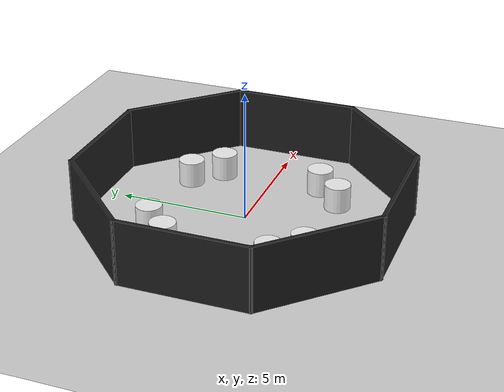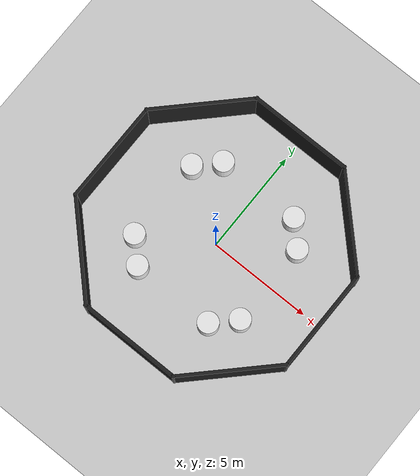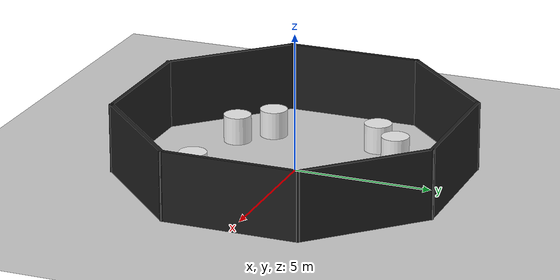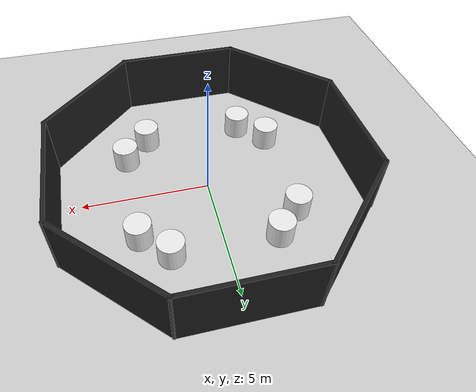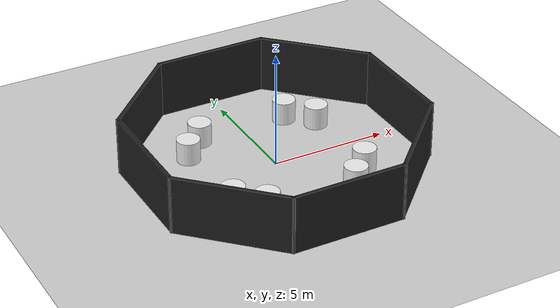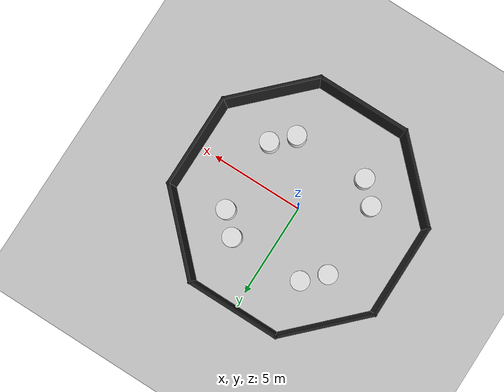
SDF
<sdf version="1.7">
 <world name="default">
  <light name="sun" type="directional">
   <pose>0 0 10 0 -0 0</pose>
   <diffuse>0.8 0.8 0.8 1</diffuse>
   <specular>0.2 0.2 0.2 1</specular>
   <attenuation>
    <range>1000</range>
    <constant>0.9</constant>
    <linear>0.01</linear>
    <quadratic>0.001</quadratic>
   </attenuation>
   <direction>-0.5 0.1 -0.9</direction>
   <spot><inner_angle>0</inner_angle><outer_angle>0</outer_angle><falloff>0</falloff></spot>
  </light>
  <model name="ground_plane">
   <static>1</static>
   <link name="link">
    <collision name="collision">
     <geometry><plane><normal>0 0 1</normal><size>100 100</size></plane></geometry>
     <surface>
      <contact><collide_bitmask>65535</collide_bitmask></contact>
      <friction><ode><mu>100</mu><mu2>50</mu2></ode></friction>
     </surface>
    </collision>
    <visual name="visual">
     <cast_shadows>0</cast_shadows>
     <geometry><plane><normal>0 0 1</normal><size>100 100</size></plane></geometry>
     <material>
      <script><uri>file://media/materials/scripts/gazebo.material</uri><name>Gazebo/Gray</name></script>
     </material>
    </visual>
   </link>
  </model>
  <gravity>0 0 -9.8</gravity>
  <magnetic_field>6e-06 2.3e-05 -4.2e-05</magnetic_field>
  <atmosphere type="adiabatic"/>
  <physics type="ode">
   <max_step_size>0.001</max_step_size>
   <real_time_factor>1</real_time_factor>
   <real_time_update_rate>1000</real_time_update_rate>
  </physics>
  <scene><ambient>0.4 0.4 0.4 1</ambient><background>0.7 0.7 0.7 1</background><shadows>1</shadows></scene>
  <audio><device>default</device></audio>
  <spherical_coordinates>
   <surface_model>EARTH_WGS84</surface_model>
   <latitude_deg>0</latitude_deg>
   <longitude_deg>0</longitude_deg>
   <elevation>0</elevation>
   <heading_deg>0</heading_deg>
  </spherical_coordinates>
  <model name="walls">
   <link name="Wall_16">
    <collision name="Wall_16_Collision">
     <geometry><box><size>5 0.15 2.5</size></box></geometry>
     <pose>0 0 1.25 0 -0 0</pose>
    </collision>
    <visual name="Wall_16_Visual">
     <pose>0 0 1.25 0 -0 0</pose>
     <geometry><box><size>5 0.15 2.5</size></box></geometry>
     <material>
      <script><uri>file://media/materials/scripts/gazebo.material</uri><name>Gazebo/Black</name></script>
      <ambient>1 1 1 1</ambient>
     </material>
     <meta><layer>0</layer></meta>
    </visual>
    <pose>0 -5.85447 0 0 -0 0</pose>
   </link>
   <link name="Wall_17">
    <collision name="Wall_17_Collision">
     <geometry><box><size>5 0.15 2.5</size></box></geometry>
     <pose>0 0 1.25 0 -0 0</pose>
    </collision>
    <visual name="Wall_17_Visual">
     <pose>0 0 1.25 0 -0 0</pose>
     <geometry><box><size>5 0.15 2.5</size></box></geometry>
     <material>
      <script><uri>file://media/materials/scripts/gazebo.material</uri><name>Gazebo/Black</name></script>
      <ambient>1 1 1 1</ambient>
     </material>
     <meta><layer>0</layer></meta>
    </visual>
    <pose>4.13973 -4.13973 0 0 -0 0.785398</pose>
   </link>
   <link name="Wall_18">
    <collision name="Wall_18_Collision">
     <geometry><box><size>5 0.15 2.5</size></box></geometry>
     <pose>0 0 1.25 0 -0 0</pose>
    </collision>
    <visual name="Wall_18_Visual">
     <pose>0 0 1.25 0 -0 0</pose>
     <geometry><box><size>5 0.15 2.5</size></box></geometry>
     <material>
      <script><uri>file://media/materials/scripts/gazebo.material</uri><name>Gazebo/Black</name></script>
      <ambient>1 1 1 1</ambient>
     </material>
     <meta><layer>0</layer></meta>
    </visual>
    <pose>5.85447 -0 0 0 -0 1.5708</pose>
   </link>
   <link name="Wall_19">
    <collision name="Wall_19_Collision">
     <geometry><box><size>5 0.15 2.5</size></box></geometry>
     <pose>0 0 1.25 0 -0 0</pose>
    </collision>
    <visual name="Wall_19_Visual">
     <pose>0 0 1.25 0 -0 0</pose>
     <geometry><box><size>5 0.15 2.5</size></box></geometry>
     <material>
      <script><uri>file://media/materials/scripts/gazebo.material</uri><name>Gazebo/Black</name></script>
      <ambient>1 1 1 1</ambient>
     </material>
     <meta><layer>0</layer></meta>
    </visual>
    <pose>4.13973 4.13973 0 0 -0 2.35619</pose>
   </link>
   <link name="Wall_20">
    <collision name="Wall_20_Collision">
     <geometry><box><size>5 0.15 2.5</size></box></geometry>
     <pose>0 0 1.25 0 -0 0</pose>
    </collision>
    <visual name="Wall_20_Visual">
     <pose>0 0 1.25 0 -0 0</pose>
     <geometry><box><size>5 0.15 2.5</size></box></geometry>
     <material>
      <script><uri>file://media/materials/scripts/gazebo.material</uri><name>Gazebo/Black</name></script>
      <ambient>1 1 1 1</ambient>
     </material>
     <meta><layer>0</layer></meta>
    </visual>
    <pose>0 5.85447 0 0 -0 3.14159</pose>
   </link>
   <link name="Wall_21">
    <collision name="Wall_21_Collision">
     <geometry><box><size>5 0.15 2.5</size></box></geometry>
     <pose>0 0 1.25 0 -0 0</pose>
    </collision>
    <visual name="Wall_21_Visual">
     <pose>0 0 1.25 0 -0 0</pose>
     <geometry><box><size>5 0.15 2.5</size></box></geometry>
     <material>
      <script><uri>file://media/materials/scripts/gazebo.material</uri><name>Gazebo/Black</name></script>
      <ambient>1 1 1 1</ambient>
     </material>
     <meta><layer>0</layer></meta>
    </visual>
    <pose>-4.13973 4.13973 0 0 -0 -2.35619</pose>
   </link>
   <link name="Wall_22">
    <collision name="Wall_22_Collision">
     <geometry><box><size>5 0.15 2.5</size></box></geometry>
     <pose>0 0 1.25 0 -0 0</pose>
    </collision>
    <visual name="Wall_22_Visual">
     <pose>0 0 1.25 0 -0 0</pose>
     <geometry><box><size>5 0.15 2.5</size></box></geometry>
     <material>
      <script><uri>file://media/materials/scripts/gazebo.material</uri><name>Gazebo/Black</name></script>
      <ambient>1 1 1 1</ambient>
     </material>
     <meta><layer>0</layer></meta>
    </visual>
    <pose>-5.85447 -0 0 0 -0 -1.5708</pose>
   </link>
   <link name="Wall_23">
    <collision name="Wall_23_Collision">
     <geometry><box><size>5 0.15 2.5</size></box></geometry>
     <pose>0 0 1.25 0 -0 0</pose>
    </collision>
    <visual name="Wall_23_Visual">
     <pose>0 0 1.25 0 -0 0</pose>
     <geometry><box><size>5 0.15 2.5</size></box></geometry>
     <material>
      <script><uri>file://media/materials/scripts/gazebo.material</uri><name>Gazebo/Black</name></script>
      <ambient>1 1 1 1</ambient>
     </material>
     <meta><layer>0</layer></meta>
    </visual>
    <pose>-4.13973 -4.13973 0 0 -0 -0.785398</pose>
   </link>
   <static>1</static>
  </model>
  <model name="unit_cylinder">
   <static>1</static>
   <pose>-2 -3 0.499994 -1e-06 0 0</pose>
   <link name="link">
    <inertial>
     <mass>1</mass>
     <inertia><ixx>0.145833</ixx><ixy>0</ixy><ixz>0</ixz><iyy>0.145833</iyy><iyz>0</iyz><izz>0.125</izz></inertia>
    </inertial>
    <collision name="collision">
     <geometry><cylinder><radius>0.5</radius><length>1</length></cylinder></geometry>
    </collision>
    <visual name="visual">
     <geometry><cylinder><radius>0.5</radius><length>1</length></cylinder></geometry>
     <material>
      <script><name>Gazebo/White</name><uri>file://media/materials/scripts/gazebo.material</uri></script>
     </material>
    </visual>
   </link>
  </model>
  <model name="unit_cylinder1">
   <static>1</static>
   <pose>-3 -2 0.5 0 -0 0</pose>
   <link name="link">
    <inertial>
     <mass>1</mass>
     <inertia><ixx>0.145833</ixx><ixy>0</ixy><ixz>0</ixz><iyy>0.145833</iyy><iyz>0</iyz><izz>0.125</izz></inertia>
    </inertial>
    <collision name="collision">
     <geometry><cylinder><radius>0.5</radius><length>1</length></cylinder></geometry>
    </collision>
    <visual name="visual">
     <geometry><cylinder><radius>0.5</radius><length>1</length></cylinder></geometry>
     <material>
      <script><name>Gazebo/White</name><uri>file://media/materials/scripts/gazebo.material</uri></script>
     </material>
    </visual>
   </link>
  </model>
  <model name="unit_cylinder2">
   <static>1</static>
   <pose>-3 2 0.499994 -1e-06 0 0</pose>
   <link name="link">
    <inertial>
     <mass>1</mass>
     <inertia><ixx>0.145833</ixx><ixy>0</ixy><ixz>0</ixz><iyy>0.145833</iyy><iyz>0</iyz><izz>0.125</izz></inertia>
    </inertial>
    <collision name="collision">
     <geometry><cylinder><radius>0.5</radius><length>1</length></cylinder></geometry>
    </collision>
    <visual name="visual">
     <geometry><cylinder><radius>0.5</radius><length>1</length></cylinder></geometry>
     <material>
      <script><name>Gazebo/White</name><uri>file://media/materials/scripts/gazebo.material</uri></script>
     </material>
    </visual>
   </link>
  </model>
  <model name="unit_cylinder3">
   <static>1</static>
   <pose>-2 3 0.499994 -1e-06 0 0</pose>
   <link name="link">
    <inertial>
     <mass>1</mass>
     <inertia><ixx>0.145833</ixx><ixy>0</ixy><ixz>0</ixz><iyy>0.145833</iyy><iyz>0</iyz><izz>0.125</izz></inertia>
    </inertial>
    <collision name="collision">
     <geometry><cylinder><radius>0.5</radius><length>1</length></cylinder></geometry>
    </collision>
    <visual name="visual">
     <geometry><cylinder><radius>0.5</radius><length>1</length></cylinder></geometry>
     <material>
      <script><name>Gazebo/White</name><uri>file://media/materials/scripts/gazebo.material</uri></script>
     </material>
    </visual>
   </link>
  </model>
  <model name="unit_cylinder4">
   <static>1</static>
   <pose>2 3 0.499994 -1e-06 0 0</pose>
   <link name="link">
    <inertial>
     <mass>1</mass>
     <inertia><ixx>0.145833</ixx><ixy>0</ixy><ixz>0</ixz><iyy>0.145833</iyy><iyz>0</iyz><izz>0.125</izz></inertia>
    </inertial>
    <collision name="collision">
     <geometry><cylinder><radius>0.5</radius><length>1</length></cylinder></geometry>
    </collision>
    <visual name="visual">
     <geometry><cylinder><radius>0.5</radius><length>1</length></cylinder></geometry>
     <material>
      <script><name>Gazebo/White</name><uri>file://media/materials/scripts/gazebo.material</uri></script>
     </material>
    </visual>
   </link>
  </model>
  <model name="unit_cylinder5">
   <static>1</static>
   <pose>3 2 0.499994 -1e-06 0 0</pose>
   <link name="link">
    <inertial>
     <mass>1</mass>
     <inertia><ixx>0.145833</ixx><ixy>0</ixy><ixz>0</ixz><iyy>0.145833</iyy><iyz>0</iyz><izz>0.125</izz></inertia>
    </inertial>
    <collision name="collision">
     <geometry><cylinder><radius>0.5</radius><length>1</length></cylinder></geometry>
    </collision>
    <visual name="visual">
     <geometry><cylinder><radius>0.5</radius><length>1</length></cylinder></geometry>
     <material>
      <script><name>Gazebo/White</name><uri>file://media/materials/scripts/gazebo.material</uri></script>
     </material>
    </visual>
   </link>
  </model>
  <model name="unit_cylinder6">
   <static>1</static>
   <pose>3 -2 0.499994 -1e-06 0 0</pose>
   <link name="link">
    <inertial>
     <mass>1</mass>
     <inertia><ixx>0.145833</ixx><ixy>0</ixy><ixz>0</ixz><iyy>0.145833</iyy><iyz>0</iyz><izz>0.125</izz></inertia>
    </inertial>
    <collision name="collision">
     <geometry><cylinder><radius>0.5</radius><length>1</length></cylinder></geometry>
    </collision>
    <visual name="visual">
     <geometry><cylinder><radius>0.5</radius><length>1</length></cylinder></geometry>
     <material>
      <script><name>Gazebo/White</name><uri>file://media/materials/scripts/gazebo.material</uri></script>
     </material>
    </visual>
   </link>
  </model>
  <model name="unit_cylinder7">
   <static>1</static>
   <pose>2 -3 0.499994 -1e-06 0 0</pose>
   <link name="link">
    <inertial>
     <mass>1</mass>
     <inertia><ixx>0.145833</ixx><ixy>0</ixy><ixz>0</ixz><iyy>0.145833</iyy><iyz>0</iyz><izz>0.125</izz></inertia>
    </inertial>
    <collision name="collision">
     <geometry><cylinder><radius>0.5</radius><length>1</length></cylinder></geometry>
    </collision>
    <visual name="visual">
     <geometry><cylinder><radius>0.5</radius><length>1</length></cylinder></geometry>
     <material>
      <script><name>Gazebo/White</name><uri>file://media/materials/scripts/gazebo.material</uri></script>
     </material>
    </visual>
   </link>
  </model>
 </world>
</sdf>
